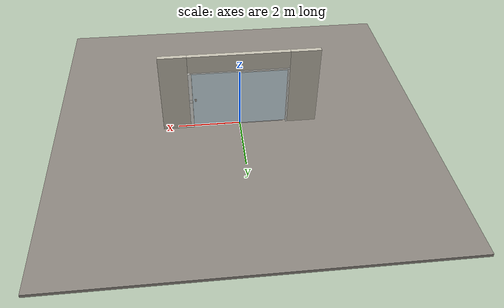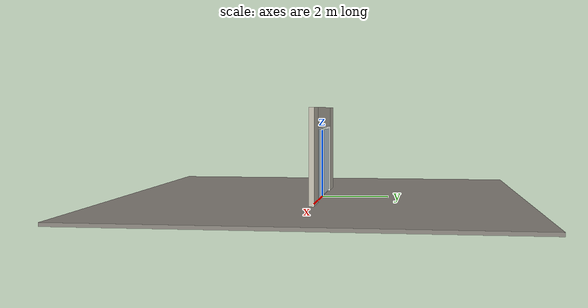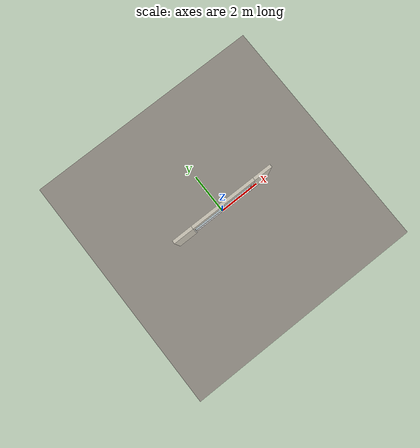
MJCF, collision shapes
<?xml version="1.0" ?>
<mujoco model="db0982_sliding_single_minimal">
  <compiler angle="radian" meshdir="../../hardware" texturedir="../../textures" autolimits="true" inertiafromgeom="false"/>
  <option timestep="0.002" integrator="implicitfast" cone="elliptic" impratio="10" noslip_iterations="3">
    <flag multiccd="enable"/>
  </option>
  <size memory="16M"/>
  <default>
    <geom condim="4" solref="0.005 1" solimp="0.95 0.99 0.001"/>
    <joint solreflimit="0.005 1" solimplimit="0.95 0.99 0.001"/>
    <tendon solreflimit="0.005 1"/>
    <equality solref="0.002 1"/>
  </default>
  <visual>
    <headlight ambient="0.4 0.4 0.4" diffuse="0.7 0.7 0.7" specular="0.2 0.2 0.2"/>
    <quality shadowsize="4096"/>
    <map znear="0.01" zfar="60"/>
  </visual>
  <asset>
    <mesh name="lever_57205841c3" file="lever_57205841c3.obj"/>
    <material name="mat_floor" rgba="0.55 0.53 0.5 1" specular="0.2" shininess="0.15" reflectance="0"/>
    <material name="mat_wall" rgba="0.78 0.76 0.7 1" specular="0.2" shininess="0.1" reflectance="0"/>
    <material name="mat_frame" rgba="0.92 0.92 0.9 1" specular="0.2" shininess="0.6" reflectance="0"/>
    <material name="mat_track" rgba="0.8 0.81 0.83 1" specular="0.8" shininess="0.6" reflectance="0.4"/>
    <material name="mat_fixed_glass" rgba="0.85 0.92 0.95 0.25" specular="0.2" shininess="0.95" reflectance="0.1"/>
    <material name="mat_leaf" rgba="0.85 0.92 0.95 0.25" specular="0.2" shininess="0.95" reflectance="0.1"/>
    <material name="mat_glass_leaf" rgba="0.85 0.92 0.95 0.25" specular="0.2" shininess="0.95" reflectance="0.1"/>
    <material name="mat_patch" rgba="0.75 0.76 0.77 1" specular="0.8" shininess="0.65" reflectance="0.4"/>
    <material name="mat_roller" rgba="0.65 0.66 0.68 1" specular="0.74" shininess="0.5" reflectance="0.36"/>
    <material name="mat_op_black_matte_metal" rgba="0.05 0.05 0.05 1" specular="0.38" shininess="0.3" reflectance="0.12"/>
    <material name="mat_trim" rgba="0.85 0.66 0.3 1" specular="0.8" shininess="0.75" reflectance="0.4"/>
    <material name="mat_op_nickel_satin" rgba="0.72 0.7 0.66 1" specular="0.8" shininess="0.65" reflectance="0.4"/>
    <material name="mat_hook" rgba="0.75 0.76 0.77 1" specular="0.8" shininess="0.65" reflectance="0.4"/>
    <texture name="skybox" type="skybox" builtin="gradient" rgb1="0.6 0.7 0.85" rgb2="0.9 0.92 0.95" width="256" height="256"/>
  </asset>
  <worldbody>
    <light name="sun" pos="1.5 -2.5 4" dir="-0.3 0.5 -0.8" directional="true" diffuse="0.8 0.8 0.8" specular="0.3 0.3 0.3" castshadow="true"/>
    <light name="fill" pos="-1.5 2.5 3" dir="0.3 -0.5 -0.7" directional="true" diffuse="0.35 0.35 0.4" castshadow="false"/>
    <camera name="robot_view" pos="0 -3.45625 2.00625" xyaxes="1 0 0 0 0.26963 0.962964" fovy="52"/>
    <camera name="far_view" pos="0 3.45625 2.00625" xyaxes="-1 0 0 0 -0.26963 0.962964" fovy="52"/>
    <camera name="iso" pos="2.62675 -2.90325 2.55925" xyaxes="0.741536 0.670913 0 -0.242917 0.268487 0.932151" fovy="46"/>
    <camera name="detail_handle" pos="1.595 -0.7775 1.33" xyaxes="0.97561 0.219512 0 -0.070934 0.315262 0.94635" fovy="38"/>
    <geom name="floor" type="box" size="6 6 0.05" pos="0 0 -0.05" material="mat_floor" group="0" contype="1" conaffinity="1" friction="0.8 0.005 0.0001" density="2400"/>
    <geom name="wall_left" type="box" size="0.4725 0.0725 1.35" pos="-2.0275 0 1.35" material="mat_wall" group="0" contype="1" conaffinity="1" friction="0.6 0.005 0.0001" density="800"/>
    <geom name="wall_right" type="box" size="0.4425 0.0725 1.35" pos="2.0575 0 1.35" material="mat_wall" group="0" contype="1" conaffinity="1" friction="0.6 0.005 0.0001" density="800"/>
    <geom name="wall_header" type="box" size="1.585 0.0725 0.289" pos="0.03 0 2.411" material="mat_wall" group="0" contype="1" conaffinity="1" friction="0.6 0.005 0.0001" density="800"/>
    <geom name="jamb_l" type="box" size="0.0225 0.0725 1.0385" pos="-1.5325 0 1.0385" material="mat_frame" group="0" contype="1" conaffinity="1" friction="0.6 0.005 0.0001" density="300"/>
    <geom name="jamb_head" type="box" size="1.555 0.0725 0.0225" pos="0 0 2.0995" material="mat_frame" group="0" contype="1" conaffinity="1" friction="0.6 0.005 0.0001" density="300"/>
    <geom name="fixed_panel_glass" type="box" size="0.735 0.003 0.9885" pos="-0.755 0.04 1.0385" material="mat_fixed_glass" group="0" contype="1" conaffinity="1" friction="0.6 0.005 0.0001" density="2500"/>
    <geom name="bottom_rail" type="box" size="1.49 0.02 0.012" pos="0.065 0 0.012" material="mat_track" group="0" contype="1" conaffinity="1" friction="0.6 0.005 0.0001" density="2700"/>
    <geom name="leaf_hook_keeper" type="box" size="0.008 0.015 0.006" pos="1.523 0 1.05" material="mat_hook" group="0" contype="1" conaffinity="1" friction="0.6 0.005 0.0001" density="7900"/>
    <geom name="jamb_latch_pwall_1050_n" type="box" size="0.0525 0.022 0.06" pos="1.5625 -0.0505 1.05" material="mat_frame" group="0" contype="1" conaffinity="1" friction="0.6 0.005 0.0001" density="300"/>
    <geom name="jamb_latch_pwall_1050_p" type="box" size="0.0525 0.022 0.06" pos="1.5625 0.0505 1.05" material="mat_frame" group="0" contype="1" conaffinity="1" friction="0.6 0.005 0.0001" density="300"/>
    <geom name="jamb_latch_pback_1050" type="box" size="0.004 0.0285 0.06" pos="1.611 0 1.05" material="mat_frame" group="0" contype="1" conaffinity="1" friction="0.6 0.005 0.0001" density="300"/>
    <geom name="jamb_latch_0" type="box" size="0.0525 0.0725 0.495" pos="1.5625 0 0.495" material="mat_frame" group="0" contype="1" conaffinity="1" friction="0.6 0.005 0.0001" density="300"/>
    <geom name="jamb_latch_1" type="box" size="0.0525 0.0725 0.4835" pos="1.5625 0 1.5935" material="mat_frame" group="0" contype="1" conaffinity="1" friction="0.6 0.005 0.0001" density="300"/>
    <site name="approach_point" pos="0 -1.5 0" quat="1 0 0 0" size="0.05" rgba="0.2 0.9 0.2 0.5" group="4"/>
    <site name="goal_point" pos="0 1.5 0" quat="1 0 0 0" size="0.05" rgba="0.2 0.9 0.2 0.5" group="4"/>
    <site name="door_plane_center" pos="0 0 1.0385" quat="1 0 0 0" size="0.02" rgba="0.2 0.9 0.2 0.5" group="4"/>
    <body name="leaf" pos="0.755 0 0">
      <inertial pos="0.000028 0.000001 1.046" mass="213.938984" quat="0.499999 0.500001 -0.499999 0.500001" diaginertia="40.151911218 73.646266748 113.725967041"/>
      <joint name="leaf_slide" type="slide" axis="-1 0 0" limited="true" range="0 1.38" damping="12.722089" frictionloss="126.177327" armature="0.5"/>
      <geom name="leaf_glass" type="box" size="0.75 0.0225 1.016" pos="0 0 1.046" material="mat_glass_leaf" group="0" contype="1" conaffinity="1" friction="0.4 0.005 0.0001" density="1"/>
      <geom name="leaf_ext_pull_p" type="box" size="0.025 0.0005 0.05" pos="0.66 0.023 1.05" material="mat_op_nickel_satin" group="1" contype="0" conaffinity="0" density="1000"/>
      <site name="leaf_ext_pull_grip_p" pos="0.66 0.0225 1.05" quat="1 0 0 0" size="0.012" rgba="0.2 0.9 0.2 0.5" group="4"/>
      <site name="leaf_edge_mid" pos="0.75 0 1.046" quat="1 0 0 0" size="0.02" rgba="0.2 0.9 0.2 0.5" group="4"/>
      <body name="leaf_handle" pos="0.69 0 1.05">
        <inertial pos="-0.019728 -0.054475 0" mass="0.376588" quat="-0.210433 0 0 0.977608" diaginertia="0.000114143 0.000570303 0.000632621"/>
        <joint name="leaf_handle_hinge" type="hinge" axis="0 -1 0" limited="true" range="0 0.05" damping="0.206307" frictionloss="0.042" stiffness="1" springref="-0.35" armature="0.01"/>
        <geom name="leaf_handle_lever_n" type="mesh" mesh="lever_57205841c3" pos="0 -0.0225 0" quat="0.707107 0.707107 0 0" material="mat_op_black_matte_metal" group="1" contype="0" conaffinity="0" density="3000"/>
        <geom name="leaf_handle_lever_col_n" type="capsule" size="0.007 0.053" pos="-0.06 -0.0775 0" quat="0.707107 0 -0.707107 0" material="mat_op_black_matte_metal" group="3" contype="1" conaffinity="1" rgba="0.8 0.3 0.3 0.25" friction="0.7 0.01 0.0001" density="3000"/>
        <geom name="leaf_handle_hub_col_n" type="cylinder" size="0.012 0.022" pos="0 -0.0525 0" quat="0.707107 -0.707107 0 0" material="mat_op_black_matte_metal" group="3" contype="1" conaffinity="1" rgba="0.8 0.3 0.3 0.25" friction="0.6 0.005 0.0001" density="3000"/>
        <site name="leaf_handle_grip_n" pos="-0.096 -0.0775 0" quat="1 0 0 0" size="0.012" rgba="0.2 0.9 0.2 0.5" group="4"/>
      </body>
      <body name="leaf_hook" pos="0.75 0 1.05">
        <inertial pos="0.026737 0 -0.009263" mass="0.072048" quat="0.200817 -0.200817 0.677991 0.677991" diaginertia="0.000005266 0.00001511 0.000019175"/>
        <joint name="leaf_hook_hinge" type="hinge" axis="0 1 0" limited="true" range="0 1" damping="0.05" frictionloss="0.1" armature="0.005"/>
        <geom name="leaf_hook_arm" type="box" size="0.022 0.005 0.006" pos="0.02 0 -0.016" material="mat_hook" group="0" contype="1" conaffinity="1" friction="0.6 0.005 0.0001" density="7900"/>
        <geom name="leaf_hook_tip" type="box" size="0.006 0.005 0.016" pos="0.036 0 0" material="mat_hook" group="0" contype="1" conaffinity="1" friction="0.6 0.005 0.0001" density="7900"/>
      </body>
    </body>
  </worldbody>
  <equality>
    <joint name="leaf_hook_couple" joint1="leaf_hook_hinge" joint2="leaf_handle_hinge" polycoef="0 1 0 0 0" active="true"/>
  </equality>
  <sensor>
    <jointpos name="leaf_slide_pos" joint="leaf_slide"/>
    <jointvel name="leaf_slide_vel" joint="leaf_slide"/>
    <jointpos name="leaf_handle_hinge_pos" joint="leaf_handle_hinge"/>
    <jointvel name="leaf_handle_hinge_vel" joint="leaf_handle_hinge"/>
    <jointpos name="leaf_hook_hinge_pos" joint="leaf_hook_hinge"/>
    <jointvel name="leaf_hook_hinge_vel" joint="leaf_hook_hinge"/>
  </sensor>
</mujoco>
